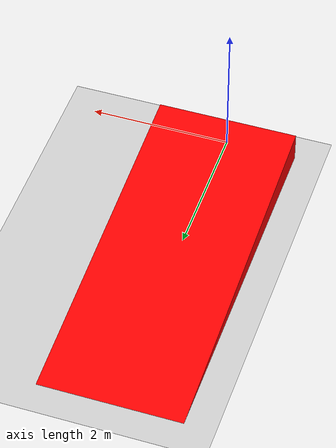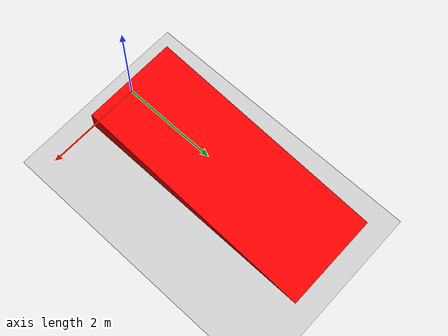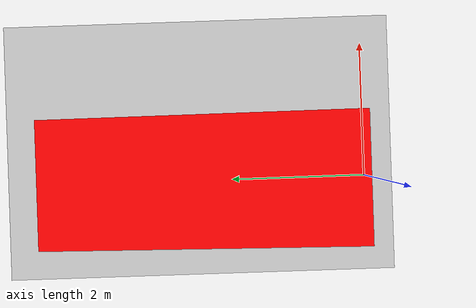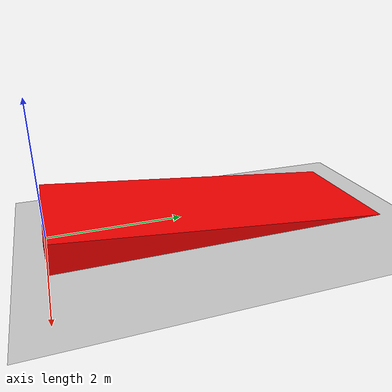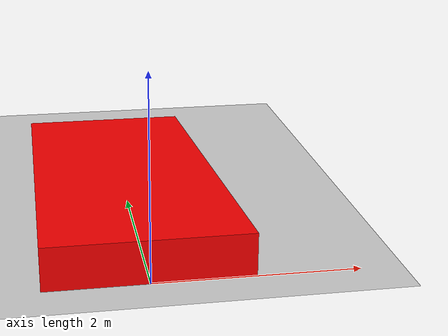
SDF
<?xml version="1.0" ?>
<sdf version="1.4">
  <world name="default">

    <!-- NOTE: loading gazebo_ros_state in the launch file by using -s libgazebo_ros_state.so
               does not work so this is the only way -->
    <plugin name="gazebo_ros_state" filename="libgazebo_ros_state.so">
      <ros>
        <namespace>/world</namespace>
      </ros>
      <update_rate>0.8</update_rate>
    </plugin>

    <!-- Add sky -->
    <scene>
      <ambient>0.7 0.7 0.7 1</ambient>
      <sky>
        <clouds>
          <speed>12</speed>
        </clouds>
      </sky>
    </scene>

    <!-- Set physics parameters -->
    <physics type="ode">
      <max_step_size>0.001</max_step_size>
      <real_time_update_rate>500</real_time_update_rate>
    </physics>

    <include>
      <uri>model://ground_plane</uri>
    </include>

    <include>
      <uri>model://sun</uri>
    </include>

    <!-- Add ramp -->
    <model name="ramp">
      <static>true</static>
      <pose>0 0 0 0 0 0</pose>
      <link name="ramp_link">
        <collision name="ramp_collision">
          <geometry>
            <mesh>
              <scale>0.001 0.001 0.001</scale> <!-- since Solidworks uses mm, while Gazebo uses m -->
              <uri>/home/tom/.gazebo/models/ramp/meshes/ramp_5_deg.STL</uri> <!-- change this -->
            </mesh>
          </geometry>
          <surface>
            <friction>
              <bullet>
                <mu>100</mu>  <!-- Static friction coefficient -->
                <mu2>100</mu2>
              </bullet>
            </friction>
          </surface>
        </collision>

        <visual name="ramp_visual">
          <material>
            <ambient>1 0 0 1</ambient>
          </material>
          <pose>0 0 0 0 0 0</pose>
          <geometry>
            <mesh>
              <scale>0.001 0.001 0.001</scale>
              <uri>/home/tom/.gazebo/models/ramp/meshes/ramp_5_deg.STL</uri> <!-- change this -->
            </mesh>
          </geometry>
        </visual>
      </link>
    </model>

    <!-- Add fixed camera -->
    <gui>
      <camera name="my_camera">
        <pose>5 5.5 0.6 0 0.07 -2.62</pose>
      </camera>
    </gui>

  </world>
</sdf>
